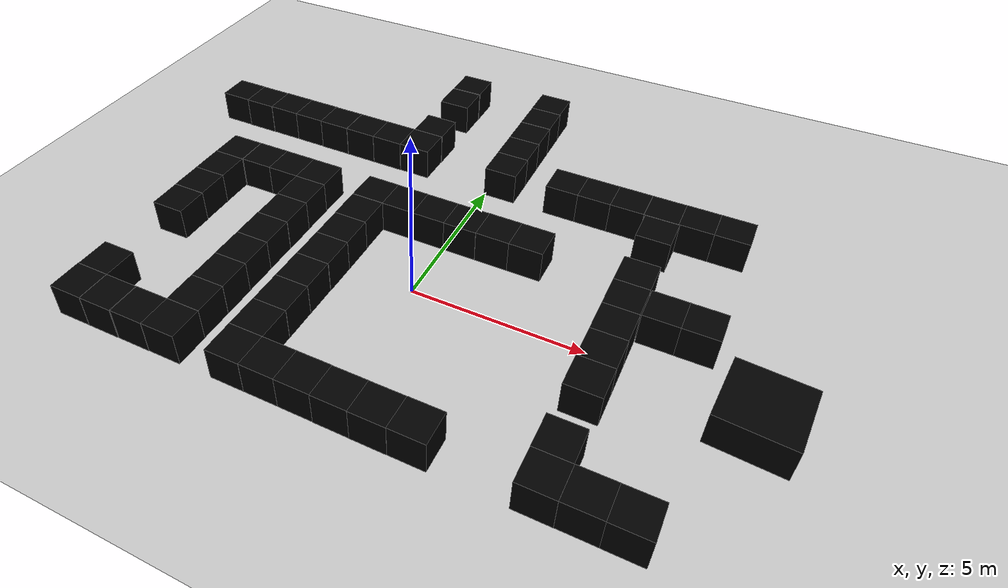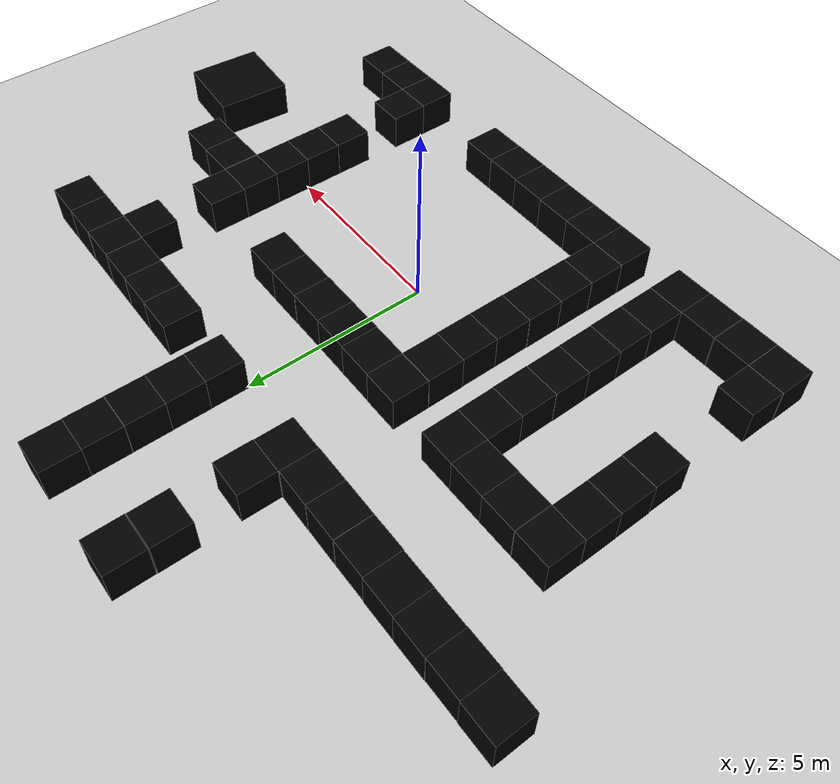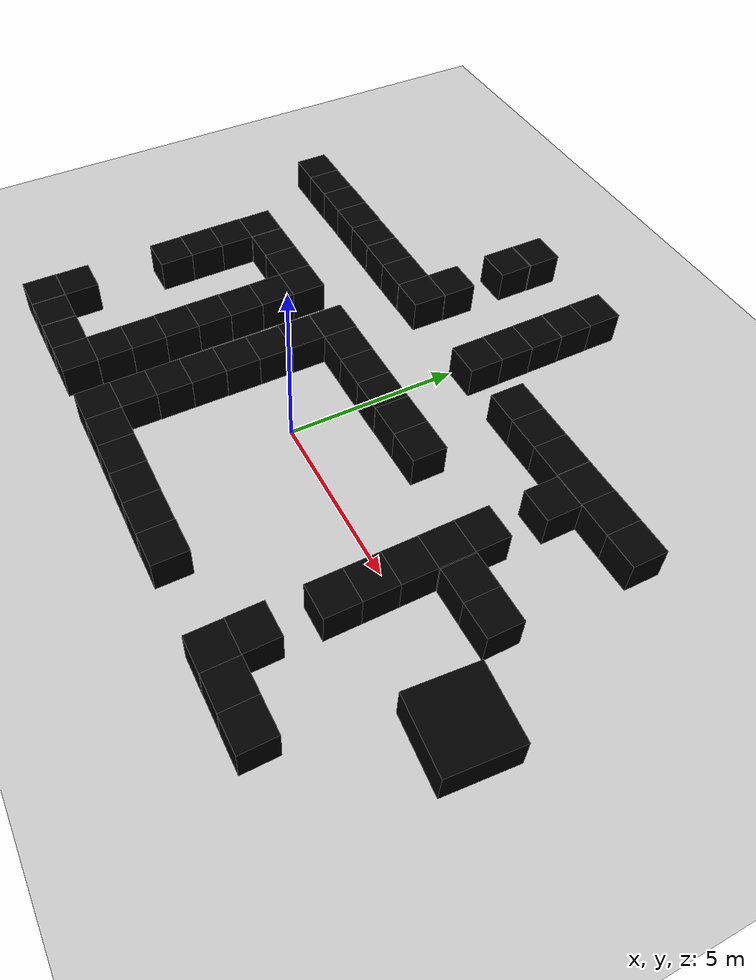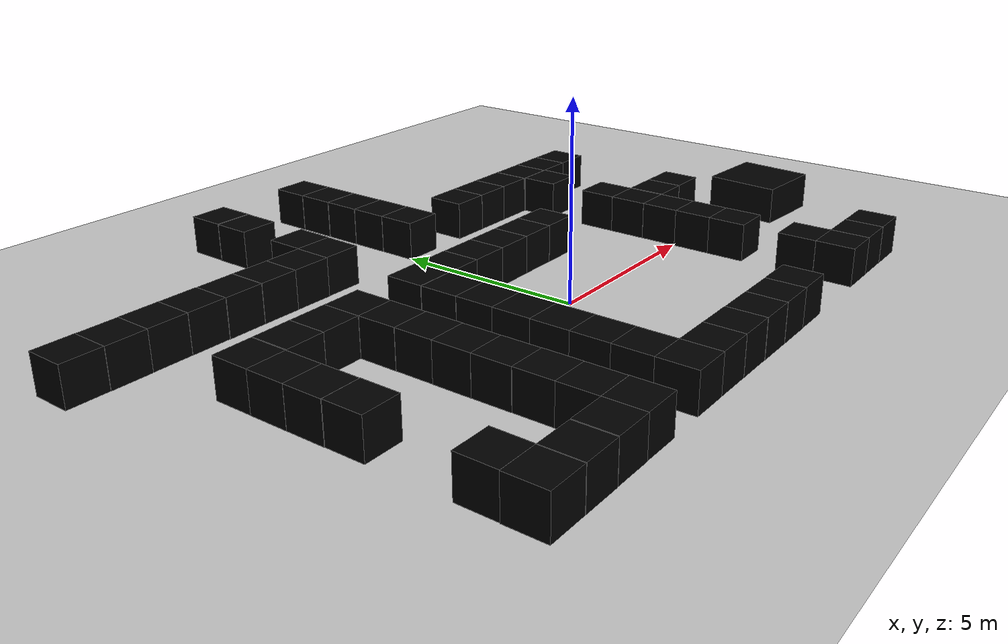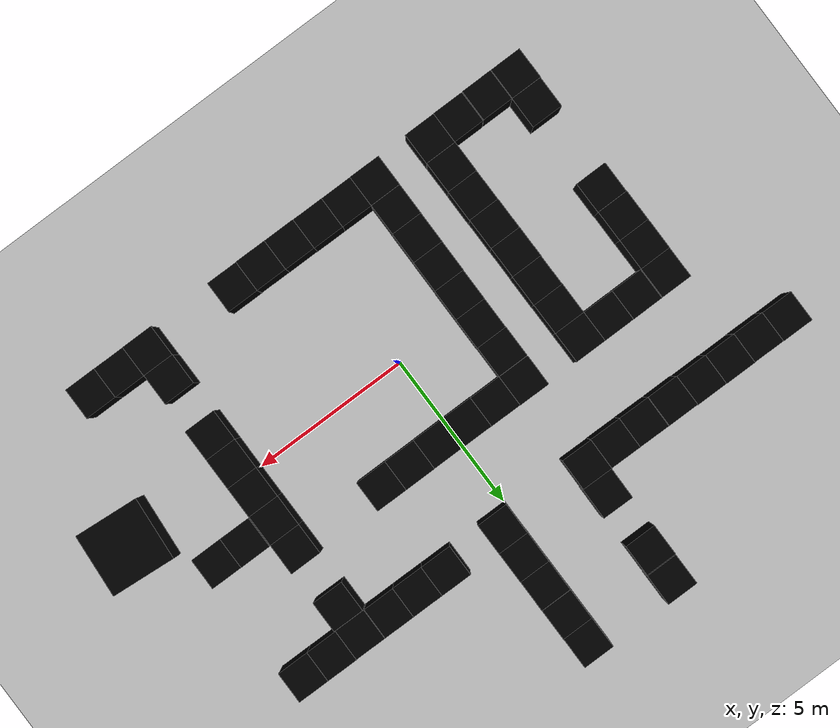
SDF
<sdf version="1.7">
 <world name="rotated_l_shape_world">
  <model name="ground_plane">
   <static>1</static>
   <link name="link">
    <collision name="collision">
     <geometry><plane><normal>0 0 1</normal><size>100 100</size></plane></geometry>
    </collision>
    <visual name="visual"><geometry><plane><normal>0 0 1</normal><size>100 100</size></plane></geometry></visual>
   </link>
  </model>
  <model name="base_1">
   <pose>-6.52785 5.50168 0.5 0 -0 -0.000868</pose>
   <link name="link">
    <collision name="collision"><geometry><box><size>1 1 1</size></box></geometry></collision>
    <visual name="visual">
     <geometry><box><size>1 1 1</size></box></geometry>
     <material><ambient>0 0 0 1</ambient><diffuse>0 0 0 1</diffuse></material>
    </visual>
    <inertial>
     <inertia><ixx>1</ixx><ixy>0</ixy><ixz>0</ixz><iyy>1</iyy><iyz>0</iyz><izz>1</izz></inertia>
     <mass>1</mass>
    </inertial>
   </link>
  </model>
  <model name="base_2">
   <pose>-5.52781 5.48791 0.5 0 -0 -0.000969</pose>
   <link name="link">
    <collision name="collision"><geometry><box><size>1 1 1</size></box></geometry></collision>
    <visual name="visual">
     <geometry><box><size>1 1 1</size></box></geometry>
     <material><ambient>0 0 0 1</ambient><diffuse>0 0 0 1</diffuse></material>
    </visual>
    <inertial>
     <inertia><ixx>1</ixx><ixy>0</ixy><ixz>0</ixz><iyy>1</iyy><iyz>0</iyz><izz>1</izz></inertia>
     <mass>1</mass>
    </inertial>
   </link>
  </model>
  <model name="base_3">
   <pose>-4.51739 5.48296 0.5 0 -0 -0.008492</pose>
   <link name="link">
    <collision name="collision"><geometry><box><size>1 1 1</size></box></geometry></collision>
    <visual name="visual">
     <geometry><box><size>1 1 1</size></box></geometry>
     <material><ambient>0 0 0 1</ambient><diffuse>0 0 0 1</diffuse></material>
    </visual>
    <inertial>
     <inertia><ixx>1</ixx><ixy>0</ixy><ixz>0</ixz><iyy>1</iyy><iyz>0</iyz><izz>1</izz></inertia>
     <mass>1</mass>
    </inertial>
   </link>
  </model>
  <model name="base_4">
   <pose>-3.51737 5.47762 0.499996 4e-06 -3e-06 -0.00854</pose>
   <link name="link">
    <collision name="collision"><geometry><box><size>1 1 1</size></box></geometry></collision>
    <visual name="visual">
     <geometry><box><size>1 1 1</size></box></geometry>
     <material><ambient>0 0 0 1</ambient><diffuse>0 0 0 1</diffuse></material>
    </visual>
    <inertial>
     <inertia><ixx>1</ixx><ixy>0</ixy><ixz>0</ixz><iyy>1</iyy><iyz>0</iyz><izz>1</izz></inertia>
     <mass>1</mass>
    </inertial>
   </link>
  </model>
  <model name="vert_1">
   <pose>-2.49512 6.47989 0.5 0 -0 -0.008769</pose>
   <link name="link">
    <collision name="collision"><geometry><box><size>1 1 1</size></box></geometry></collision>
    <visual name="visual">
     <geometry><box><size>1 1 1</size></box></geometry>
     <material><ambient>0 0 0 1</ambient><diffuse>0 0 0 1</diffuse></material>
    </visual>
    <inertial>
     <inertia><ixx>1</ixx><ixy>0</ixy><ixz>0</ixz><iyy>1</iyy><iyz>0</iyz><izz>1</izz></inertia>
     <mass>1</mass>
    </inertial>
   </link>
  </model>
  <model name="vert_2">
   <pose>-2.50707 8.4806 0.5 0 -0 2.6e-05</pose>
   <link name="link">
    <collision name="collision"><geometry><box><size>1 1 1</size></box></geometry></collision>
    <visual name="visual">
     <geometry><box><size>1 1 1</size></box></geometry>
     <material><ambient>0 0 0 1</ambient><diffuse>0 0 0 1</diffuse></material>
    </visual>
    <inertial>
     <inertia><ixx>1</ixx><ixy>0</ixy><ixz>0</ixz><iyy>1</iyy><iyz>0</iyz><izz>1</izz></inertia>
     <mass>1</mass>
    </inertial>
   </link>
  </model>
  <model name="vert_3">
   <pose>-2.49699 9.5027 0.5 0 -0 2.7e-05</pose>
   <link name="link">
    <collision name="collision"><geometry><box><size>1 1 1</size></box></geometry></collision>
    <visual name="visual">
     <geometry><box><size>1 1 1</size></box></geometry>
     <material><ambient>0 0 0 1</ambient><diffuse>0 0 0 1</diffuse></material>
    </visual>
    <inertial>
     <inertia><ixx>1</ixx><ixy>0</ixy><ixz>0</ixz><iyy>1</iyy><iyz>0</iyz><izz>1</izz></inertia>
     <mass>1</mass>
    </inertial>
   </link>
  </model>
  <model name="hollow_box">
   <pose>9.29913 -0.454122 0.5 0 -0 -0.078746</pose>
   <link name="link">
    <collision name="collision"><geometry><box><size>2 2 1</size></box></geometry></collision>
    <visual name="visual">
     <geometry><box><size>2 2 1</size></box></geometry>
     <material><ambient>0 0 0 0</ambient><diffuse>0 0 0 0</diffuse></material>
    </visual>
    <inertial>
     <inertia><ixx>1</ixx><ixy>0</ixy><ixz>0</ixz><iyy>1</iyy><iyz>0</iyz><izz>1</izz></inertia>
     <mass>1</mass>
    </inertial>
   </link>
  </model>
  <gravity>0 0 -9.8</gravity>
  <magnetic_field>6e-06 2.3e-05 -4.2e-05</magnetic_field>
  <atmosphere type="adiabatic"/>
  <physics type="ode">
   <max_step_size>0.001</max_step_size>
   <real_time_factor>1</real_time_factor>
   <real_time_update_rate>1000</real_time_update_rate>
  </physics>
  <scene><ambient>0.4 0.4 0.4 1</ambient><background>0.7 0.7 0.7 1</background><shadows>1</shadows></scene>
  <spherical_coordinates>
   <surface_model>EARTH_WGS84</surface_model>
   <latitude_deg>0</latitude_deg>
   <longitude_deg>0</longitude_deg>
   <elevation>0</elevation>
   <heading_deg>0</heading_deg>
  </spherical_coordinates>
  <model name="base_2_clone">
   <pose>-7.53131 2.47951 0.5 0 -0 0.003821</pose>
   <link name="link">
    <collision name="collision"><geometry><box><size>1 1 1</size></box></geometry></collision>
    <visual name="visual">
     <geometry><box><size>1 1 1</size></box></geometry>
     <material><ambient>0 0 0 1</ambient><diffuse>0 0 0 1</diffuse></material>
    </visual>
    <inertial>
     <inertia><ixx>1</ixx><ixy>0</ixy><ixz>0</ixz><iyy>1</iyy><iyz>0</iyz><izz>1</izz></inertia>
     <mass>1</mass>
    </inertial>
   </link>
  </model>
  <model name="base_2_clone_0">
   <pose>-6.51392 2.48553 0.5 0 -0 0.005429</pose>
   <link name="link">
    <collision name="collision"><geometry><box><size>1 1 1</size></box></geometry></collision>
    <visual name="visual">
     <geometry><box><size>1 1 1</size></box></geometry>
     <material><ambient>0 0 0 1</ambient><diffuse>0 0 0 1</diffuse></material>
    </visual>
    <inertial>
     <inertia><ixx>1</ixx><ixy>0</ixy><ixz>0</ixz><iyy>1</iyy><iyz>0</iyz><izz>1</izz></inertia>
     <mass>1</mass>
    </inertial>
   </link>
  </model>
  <model name="base_2_clone_1">
   <pose>-5.51349 2.48825 0.5 0 -0 0.004582</pose>
   <link name="link">
    <collision name="collision"><geometry><box><size>1 1 1</size></box></geometry></collision>
    <visual name="visual">
     <geometry><box><size>1 1 1</size></box></geometry>
     <material><ambient>0 0 0 1</ambient><diffuse>0 0 0 1</diffuse></material>
    </visual>
    <inertial>
     <inertia><ixx>1</ixx><ixy>0</ixy><ixz>0</ixz><iyy>1</iyy><iyz>0</iyz><izz>1</izz></inertia>
     <mass>1</mass>
    </inertial>
   </link>
  </model>
  <model name="base_2_clone_2">
   <pose>-4.51338 2.48966 0.5 0 -0 0.00438</pose>
   <link name="link">
    <collision name="collision"><geometry><box><size>1 1 1</size></box></geometry></collision>
    <visual name="visual">
     <geometry><box><size>1 1 1</size></box></geometry>
     <material><ambient>0 0 0 1</ambient><diffuse>0 0 0 1</diffuse></material>
    </visual>
    <inertial>
     <inertia><ixx>1</ixx><ixy>0</ixy><ixz>0</ixz><iyy>1</iyy><iyz>0</iyz><izz>1</izz></inertia>
     <mass>1</mass>
    </inertial>
   </link>
  </model>
  <model name="base_2_clone_2_clone_0">
   <pose>-7.53159 1.4795 0.5 0 -0 0.00382</pose>
   <link name="link">
    <collision name="collision"><geometry><box><size>1 1 1</size></box></geometry></collision>
    <visual name="visual">
     <geometry><box><size>1 1 1</size></box></geometry>
     <material><ambient>0 0 0 1</ambient><diffuse>0 0 0 1</diffuse></material>
    </visual>
    <inertial>
     <inertia><ixx>1</ixx><ixy>0</ixy><ixz>0</ixz><iyy>1</iyy><iyz>0</iyz><izz>1</izz></inertia>
     <mass>1</mass>
    </inertial>
   </link>
  </model>
  <model name="base_2_clone_2_clone_1">
   <pose>-7.52538 0.479514 0.5 0 -0 0.00382</pose>
   <link name="link">
    <collision name="collision"><geometry><box><size>1 1 1</size></box></geometry></collision>
    <visual name="visual">
     <geometry><box><size>1 1 1</size></box></geometry>
     <material><ambient>0 0 0 1</ambient><diffuse>0 0 0 1</diffuse></material>
    </visual>
    <inertial>
     <inertia><ixx>1</ixx><ixy>0</ixy><ixz>0</ixz><iyy>1</iyy><iyz>0</iyz><izz>1</izz></inertia>
     <mass>1</mass>
    </inertial>
   </link>
  </model>
  <model name="base_2_clone_2_clone_2">
   <pose>-4.47865 -3.51047 0.5 0 -0 0.004098</pose>
   <link name="link">
    <collision name="collision"><geometry><box><size>1 1 1</size></box></geometry></collision>
    <visual name="visual">
     <geometry><box><size>1 1 1</size></box></geometry>
     <material><ambient>0 0 0 1</ambient><diffuse>0 0 0 1</diffuse></material>
    </visual>
    <inertial>
     <inertia><ixx>1</ixx><ixy>0</ixy><ixz>0</ixz><iyy>1</iyy><iyz>0</iyz><izz>1</izz></inertia>
     <mass>1</mass>
    </inertial>
   </link>
  </model>
  <model name="base_2_clone_2_clone_3">
   <pose>-7.50105 -4.53582 0.5 0 -0 0.004192</pose>
   <link name="link">
    <collision name="collision"><geometry><box><size>1 1 1</size></box></geometry></collision>
    <visual name="visual">
     <geometry><box><size>1 1 1</size></box></geometry>
     <material><ambient>0 0 0 1</ambient><diffuse>0 0 0 1</diffuse></material>
    </visual>
    <inertial>
     <inertia><ixx>1</ixx><ixy>0</ixy><ixz>0</ixz><iyy>1</iyy><iyz>0</iyz><izz>1</izz></inertia>
     <mass>1</mass>
    </inertial>
   </link>
  </model>
  <model name="base_2_clone_2_clone_4">
   <pose>-6.48883 -4.53341 0.5 0 -0 0.003026</pose>
   <link name="link">
    <collision name="collision"><geometry><box><size>1 1 1</size></box></geometry></collision>
    <visual name="visual">
     <geometry><box><size>1 1 1</size></box></geometry>
     <material><ambient>0 0 0 1</ambient><diffuse>0 0 0 1</diffuse></material>
    </visual>
    <inertial>
     <inertia><ixx>1</ixx><ixy>0</ixy><ixz>0</ixz><iyy>1</iyy><iyz>0</iyz><izz>1</izz></inertia>
     <mass>1</mass>
    </inertial>
   </link>
  </model>
  <model name="base_2_clone_2_clone_5">
   <pose>-4.50757 1.48967 0.5 0 -0 0.004386</pose>
   <link name="link">
    <collision name="collision"><geometry><box><size>1 1 1</size></box></geometry></collision>
    <visual name="visual">
     <geometry><box><size>1 1 1</size></box></geometry>
     <material><ambient>0 0 0 1</ambient><diffuse>0 0 0 1</diffuse></material>
    </visual>
    <inertial>
     <inertia><ixx>1</ixx><ixy>0</ixy><ixz>0</ixz><iyy>1</iyy><iyz>0</iyz><izz>1</izz></inertia>
     <mass>1</mass>
    </inertial>
   </link>
  </model>
  <model name="base_2_clone_2_clone_6">
   <pose>-4.49647 0.489678 0.5 0 -0 0.004445</pose>
   <link name="link">
    <collision name="collision"><geometry><box><size>1 1 1</size></box></geometry></collision>
    <visual name="visual">
     <geometry><box><size>1 1 1</size></box></geometry>
     <material><ambient>0 0 0 1</ambient><diffuse>0 0 0 1</diffuse></material>
    </visual>
    <inertial>
     <inertia><ixx>1</ixx><ixy>0</ixy><ixz>0</ixz><iyy>1</iyy><iyz>0</iyz><izz>1</izz></inertia>
     <mass>1</mass>
    </inertial>
   </link>
  </model>
  <model name="base_2_clone_2_clone_7">
   <pose>-4.49862 -0.510347 0.5 0 -0 0.004454</pose>
   <link name="link">
    <collision name="collision"><geometry><box><size>1 1 1</size></box></geometry></collision>
    <visual name="visual">
     <geometry><box><size>1 1 1</size></box></geometry>
     <material><ambient>0 0 0 1</ambient><diffuse>0 0 0 1</diffuse></material>
    </visual>
    <inertial>
     <inertia><ixx>1</ixx><ixy>0</ixy><ixz>0</ixz><iyy>1</iyy><iyz>0</iyz><izz>1</izz></inertia>
     <mass>1</mass>
    </inertial>
   </link>
  </model>
  <model name="base_2_clone_2_clone_8">
   <pose>-4.49007 -1.51033 0.5 0 -0 0.004423</pose>
   <link name="link">
    <collision name="collision"><geometry><box><size>1 1 1</size></box></geometry></collision>
    <visual name="visual">
     <geometry><box><size>1 1 1</size></box></geometry>
     <material><ambient>0 0 0 1</ambient><diffuse>0 0 0 1</diffuse></material>
    </visual>
    <inertial>
     <inertia><ixx>1</ixx><ixy>0</ixy><ixz>0</ixz><iyy>1</iyy><iyz>0</iyz><izz>1</izz></inertia>
     <mass>1</mass>
    </inertial>
   </link>
  </model>
  <model name="base_2_clone_2_clone_9">
   <pose>-5.46979 -4.52337 0.5 0 -0 0.003053</pose>
   <link name="link">
    <collision name="collision"><geometry><box><size>1 1 1</size></box></geometry></collision>
    <visual name="visual">
     <geometry><box><size>1 1 1</size></box></geometry>
     <material><ambient>0 0 0 1</ambient><diffuse>0 0 0 1</diffuse></material>
    </visual>
    <inertial>
     <inertia><ixx>1</ixx><ixy>0</ixy><ixz>0</ixz><iyy>1</iyy><iyz>0</iyz><izz>1</izz></inertia>
     <mass>1</mass>
    </inertial>
   </link>
  </model>
  <model name="base_2_clone_2_clone_10">
   <pose>-7.51142 -0.523993 0.5 0 -0 0.004492</pose>
   <link name="link">
    <collision name="collision"><geometry><box><size>1 1 1</size></box></geometry></collision>
    <visual name="visual">
     <geometry><box><size>1 1 1</size></box></geometry>
     <material><ambient>0 0 0 1</ambient><diffuse>0 0 0 1</diffuse></material>
    </visual>
    <inertial>
     <inertia><ixx>1</ixx><ixy>0</ixy><ixz>0</ixz><iyy>1</iyy><iyz>0</iyz><izz>1</izz></inertia>
     <mass>1</mass>
    </inertial>
   </link>
  </model>
  <model name="base_2_clone_2_clone_11">
   <pose>-4.47905 -2.5103 0.5 -0 -1e-06 0.004419</pose>
   <link name="link">
    <collision name="collision"><geometry><box><size>1 1 1</size></box></geometry></collision>
    <visual name="visual">
     <geometry><box><size>1 1 1</size></box></geometry>
     <material><ambient>0 0 0 1</ambient><diffuse>0 0 0 1</diffuse></material>
    </visual>
    <inertial>
     <inertia><ixx>1</ixx><ixy>0</ixy><ixz>0</ixz><iyy>1</iyy><iyz>0</iyz><izz>1</izz></inertia>
     <mass>1</mass>
    </inertial>
   </link>
  </model>
  <model name="base_1_clone">
   <pose>-7.52788 5.50775 0.5 0 -0 -0.000889</pose>
   <link name="link">
    <collision name="collision"><geometry><box><size>1 1 1</size></box></geometry></collision>
    <visual name="visual">
     <geometry><box><size>1 1 1</size></box></geometry>
     <material><ambient>0 0 0 1</ambient><diffuse>0 0 0 1</diffuse></material>
    </visual>
    <inertial>
     <inertia><ixx>1</ixx><ixy>0</ixy><ixz>0</ixz><iyy>1</iyy><iyz>0</iyz><izz>1</izz></inertia>
     <mass>1</mass>
    </inertial>
   </link>
  </model>
  <model name="base_1_clone_0">
   <pose>-8.52797 5.50107 0.5 0 -0 -0.00075</pose>
   <link name="link">
    <collision name="collision"><geometry><box><size>1 1 1</size></box></geometry></collision>
    <visual name="visual">
     <geometry><box><size>1 1 1</size></box></geometry>
     <material><ambient>0 0 0 1</ambient><diffuse>0 0 0 1</diffuse></material>
    </visual>
    <inertial>
     <inertia><ixx>1</ixx><ixy>0</ixy><ixz>0</ixz><iyy>1</iyy><iyz>0</iyz><izz>1</izz></inertia>
     <mass>1</mass>
    </inertial>
   </link>
  </model>
  <model name="base_1_clone_1">
   <pose>-9.52802 5.51026 0.5 0 -0 -0.00065</pose>
   <link name="link">
    <collision name="collision"><geometry><box><size>1 1 1</size></box></geometry></collision>
    <visual name="visual">
     <geometry><box><size>1 1 1</size></box></geometry>
     <material><ambient>0 0 0 1</ambient><diffuse>0 0 0 1</diffuse></material>
    </visual>
    <inertial>
     <inertia><ixx>1</ixx><ixy>0</ixy><ixz>0</ixz><iyy>1</iyy><iyz>0</iyz><izz>1</izz></inertia>
     <mass>1</mass>
    </inertial>
   </link>
  </model>
  <model name="base_1_clone_2">
   <pose>-2.5172 5.48004 0.5 -0 -0 -0.008766</pose>
   <link name="link">
    <collision name="collision"><geometry><box><size>1 1 1</size></box></geometry></collision>
    <visual name="visual">
     <geometry><box><size>1 1 1</size></box></geometry>
     <material><ambient>0 0 0 1</ambient><diffuse>0 0 0 1</diffuse></material>
    </visual>
    <inertial>
     <inertia><ixx>1</ixx><ixy>0</ixy><ixz>0</ixz><iyy>1</iyy><iyz>0</iyz><izz>1</izz></inertia>
     <mass>1</mass>
    </inertial>
   </link>
  </model>
  <model name="base_1_clone_3">
   <pose>-4.46981 -4.5137 0.5 0 -0 0.003053</pose>
   <link name="link">
    <collision name="collision"><geometry><box><size>1 1 1</size></box></geometry></collision>
    <visual name="visual">
     <geometry><box><size>1 1 1</size></box></geometry>
     <material><ambient>0 0 0 1</ambient><diffuse>0 0 0 1</diffuse></material>
    </visual>
    <inertial>
     <inertia><ixx>1</ixx><ixy>0</ixy><ixz>0</ixz><iyy>1</iyy><iyz>0</iyz><izz>1</izz></inertia>
     <mass>1</mass>
    </inertial>
   </link>
  </model>
  <model name="base_1_clone_4">
   <pose>-7.48992 -3.53346 0.5 0 -0 -0.000548</pose>
   <link name="link">
    <collision name="collision"><geometry><box><size>1 1 1</size></box></geometry></collision>
    <visual name="visual">
     <geometry><box><size>1 1 1</size></box></geometry>
     <material><ambient>0 0 0 1</ambient><diffuse>0 0 0 1</diffuse></material>
    </visual>
    <inertial>
     <inertia><ixx>1</ixx><ixy>0</ixy><ixz>0</ixz><iyy>1</iyy><iyz>0</iyz><izz>1</izz></inertia>
     <mass>1</mass>
    </inertial>
   </link>
  </model>
  <model name="base_1_clone_5">
   <pose>-2.51569 -4.49601 0.5 0 -0 -0.000301</pose>
   <link name="link">
    <collision name="collision"><geometry><box><size>1 1 1</size></box></geometry></collision>
    <visual name="visual">
     <geometry><box><size>1 1 1</size></box></geometry>
     <material><ambient>0 0 0 1</ambient><diffuse>0 0 0 1</diffuse></material>
    </visual>
    <inertial>
     <inertia><ixx>1</ixx><ixy>0</ixy><ixz>0</ixz><iyy>1</iyy><iyz>0</iyz><izz>1</izz></inertia>
     <mass>1</mass>
    </inertial>
   </link>
  </model>
  <model name="base_1_clone_6">
   <pose>-2.51465 -3.49411 0.5 0 -0 0.000959</pose>
   <link name="link">
    <collision name="collision"><geometry><box><size>1 1 1</size></box></geometry></collision>
    <visual name="visual">
     <geometry><box><size>1 1 1</size></box></geometry>
     <material><ambient>0 0 0 1</ambient><diffuse>0 0 0 1</diffuse></material>
    </visual>
    <inertial>
     <inertia><ixx>1</ixx><ixy>0</ixy><ixz>0</ixz><iyy>1</iyy><iyz>0</iyz><izz>1</izz></inertia>
     <mass>1</mass>
    </inertial>
   </link>
  </model>
  <model name="base_1_clone_7">
   <pose>-2.5103 -2.49409 0.5 0 -0 0.000976</pose>
   <link name="link">
    <collision name="collision"><geometry><box><size>1 1 1</size></box></geometry></collision>
    <visual name="visual">
     <geometry><box><size>1 1 1</size></box></geometry>
     <material><ambient>0 0 0 1</ambient><diffuse>0 0 0 1</diffuse></material>
    </visual>
    <inertial>
     <inertia><ixx>1</ixx><ixy>0</ixy><ixz>0</ixz><iyy>1</iyy><iyz>0</iyz><izz>1</izz></inertia>
     <mass>1</mass>
    </inertial>
   </link>
  </model>
  <model name="base_1_clone_8">
   <pose>-2.50895 -1.49405 0.5 0 -0 0.001052</pose>
   <link name="link">
    <collision name="collision"><geometry><box><size>1 1 1</size></box></geometry></collision>
    <visual name="visual">
     <geometry><box><size>1 1 1</size></box></geometry>
     <material><ambient>0 0 0 1</ambient><diffuse>0 0 0 1</diffuse></material>
    </visual>
    <inertial>
     <inertia><ixx>1</ixx><ixy>0</ixy><ixz>0</ixz><iyy>1</iyy><iyz>0</iyz><izz>1</izz></inertia>
     <mass>1</mass>
    </inertial>
   </link>
  </model>
  <model name="base_1_clone_9">
   <pose>-2.50093 -0.493942 0.5 0 -0 0.001228</pose>
   <link name="link">
    <collision name="collision"><geometry><box><size>1 1 1</size></box></geometry></collision>
    <visual name="visual">
     <geometry><box><size>1 1 1</size></box></geometry>
     <material><ambient>0 0 0 1</ambient><diffuse>0 0 0 1</diffuse></material>
    </visual>
    <inertial>
     <inertia><ixx>1</ixx><ixy>0</ixy><ixz>0</ixz><iyy>1</iyy><iyz>0</iyz><izz>1</izz></inertia>
     <mass>1</mass>
    </inertial>
   </link>
  </model>
  <model name="base_1_clone_10">
   <pose>-2.50073 0.506109 0.5 0 -0 0.001326</pose>
   <link name="link">
    <collision name="collision"><geometry><box><size>1 1 1</size></box></geometry></collision>
    <visual name="visual">
     <geometry><box><size>1 1 1</size></box></geometry>
     <material><ambient>0 0 0 1</ambient><diffuse>0 0 0 1</diffuse></material>
    </visual>
    <inertial>
     <inertia><ixx>1</ixx><ixy>0</ixy><ixz>0</ixz><iyy>1</iyy><iyz>0</iyz><izz>1</izz></inertia>
     <mass>1</mass>
    </inertial>
   </link>
  </model>
  <model name="base_1_clone_11">
   <pose>-2.50966 1.50617 0.5 0 -0 0.001464</pose>
   <link name="link">
    <collision name="collision"><geometry><box><size>1 1 1</size></box></geometry></collision>
    <visual name="visual">
     <geometry><box><size>1 1 1</size></box></geometry>
     <material><ambient>0 0 0 1</ambient><diffuse>0 0 0 1</diffuse></material>
    </visual>
    <inertial>
     <inertia><ixx>1</ixx><ixy>0</ixy><ixz>0</ixz><iyy>1</iyy><iyz>0</iyz><izz>1</izz></inertia>
     <mass>1</mass>
    </inertial>
   </link>
  </model>
  <model name="base_1_clone_12">
   <pose>-2.51207 2.51637 0.5 0 -0 -0.001304</pose>
   <link name="link">
    <collision name="collision"><geometry><box><size>1 1 1</size></box></geometry></collision>
    <visual name="visual">
     <geometry><box><size>1 1 1</size></box></geometry>
     <material><ambient>0 0 0 1</ambient><diffuse>0 0 0 1</diffuse></material>
    </visual>
    <inertial>
     <inertia><ixx>1</ixx><ixy>0</ixy><ixz>0</ixz><iyy>1</iyy><iyz>0</iyz><izz>1</izz></inertia>
     <mass>1</mass>
    </inertial>
   </link>
  </model>
  <model name="base_1_clone_13">
   <pose>-1.51568 -4.49386 0.5 0 -0 -0.000305</pose>
   <link name="link">
    <collision name="collision"><geometry><box><size>1 1 1</size></box></geometry></collision>
    <visual name="visual">
     <geometry><box><size>1 1 1</size></box></geometry>
     <material><ambient>0 0 0 1</ambient><diffuse>0 0 0 1</diffuse></material>
    </visual>
    <inertial>
     <inertia><ixx>1</ixx><ixy>0</ixy><ixz>0</ixz><iyy>1</iyy><iyz>0</iyz><izz>1</izz></inertia>
     <mass>1</mass>
    </inertial>
   </link>
  </model>
  <model name="base_1_clone_14">
   <pose>-0.515667 -4.49651 0.5 0 -0 -0.000314</pose>
   <link name="link">
    <collision name="collision"><geometry><box><size>1 1 1</size></box></geometry></collision>
    <visual name="visual">
     <geometry><box><size>1 1 1</size></box></geometry>
     <material><ambient>0 0 0 1</ambient><diffuse>0 0 0 1</diffuse></material>
    </visual>
    <inertial>
     <inertia><ixx>1</ixx><ixy>0</ixy><ixz>0</ixz><iyy>1</iyy><iyz>0</iyz><izz>1</izz></inertia>
     <mass>1</mass>
    </inertial>
   </link>
  </model>
  <model name="base_1_clone_15">
   <pose>0.484374 -4.50464 0.5 0 -0 -0.000336</pose>
   <link name="link">
    <collision name="collision"><geometry><box><size>1 1 1</size></box></geometry></collision>
    <visual name="visual">
     <geometry><box><size>1 1 1</size></box></geometry>
     <material><ambient>0 0 0 1</ambient><diffuse>0 0 0 1</diffuse></material>
    </visual>
    <inertial>
     <inertia><ixx>1</ixx><ixy>0</ixy><ixz>0</ixz><iyy>1</iyy><iyz>0</iyz><izz>1</izz></inertia>
     <mass>1</mass>
    </inertial>
   </link>
  </model>
  <model name="base_1_clone_16">
   <pose>1.4844 -4.50925 0.5 0 -0 -0.000323</pose>
   <link name="link">
    <collision name="collision"><geometry><box><size>1 1 1</size></box></geometry></collision>
    <visual name="visual">
     <geometry><box><size>1 1 1</size></box></geometry>
     <material><ambient>0 0 0 1</ambient><diffuse>0 0 0 1</diffuse></material>
    </visual>
    <inertial>
     <inertia><ixx>1</ixx><ixy>0</ixy><ixz>0</ixz><iyy>1</iyy><iyz>0</iyz><izz>1</izz></inertia>
     <mass>1</mass>
    </inertial>
   </link>
  </model>
  <model name="base_1_clone_17">
   <pose>-1.51202 2.5066 0.500001 -1e-06 0 -0.001177</pose>
   <link name="link">
    <collision name="collision"><geometry><box><size>1 1 1</size></box></geometry></collision>
    <visual name="visual">
     <geometry><box><size>1 1 1</size></box></geometry>
     <material><ambient>0 0 0 1</ambient><diffuse>0 0 0 1</diffuse></material>
    </visual>
    <inertial>
     <inertia><ixx>1</ixx><ixy>0</ixy><ixz>0</ixz><iyy>1</iyy><iyz>0</iyz><izz>1</izz></inertia>
     <mass>1</mass>
    </inertial>
   </link>
  </model>
  <model name="base_1_clone_18">
   <pose>-0.511984 2.49961 0.5 0 -0 -0.001102</pose>
   <link name="link">
    <collision name="collision"><geometry><box><size>1 1 1</size></box></geometry></collision>
    <visual name="visual">
     <geometry><box><size>1 1 1</size></box></geometry>
     <material><ambient>0 0 0 1</ambient><diffuse>0 0 0 1</diffuse></material>
    </visual>
    <inertial>
     <inertia><ixx>1</ixx><ixy>0</ixy><ixz>0</ixz><iyy>1</iyy><iyz>0</iyz><izz>1</izz></inertia>
     <mass>1</mass>
    </inertial>
   </link>
  </model>
  <model name="base_1_clone_19">
   <pose>0.488056 2.49715 0.5 0 -0 -0.001086</pose>
   <link name="link">
    <collision name="collision"><geometry><box><size>1 1 1</size></box></geometry></collision>
    <visual name="visual">
     <geometry><box><size>1 1 1</size></box></geometry>
     <material><ambient>0 0 0 1</ambient><diffuse>0 0 0 1</diffuse></material>
    </visual>
    <inertial>
     <inertia><ixx>1</ixx><ixy>0</ixy><ixz>0</ixz><iyy>1</iyy><iyz>0</iyz><izz>1</izz></inertia>
     <mass>1</mass>
    </inertial>
   </link>
  </model>
  <model name="base_1_clone_20">
   <pose>1.48816 2.50206 0.5 0 -0 -0.000893</pose>
   <link name="link">
    <collision name="collision"><geometry><box><size>1 1 1</size></box></geometry></collision>
    <visual name="visual">
     <geometry><box><size>1 1 1</size></box></geometry>
     <material><ambient>0 0 0 1</ambient><diffuse>0 0 0 1</diffuse></material>
    </visual>
    <inertial>
     <inertia><ixx>1</ixx><ixy>0</ixy><ixz>0</ixz><iyy>1</iyy><iyz>0</iyz><izz>1</izz></inertia>
     <mass>1</mass>
    </inertial>
   </link>
  </model>
  <model name="base_1_clone_21">
   <pose>0.473028 5.50904 0.5 0 -0 -0.000748</pose>
   <link name="link">
    <collision name="collision"><geometry><box><size>1 1 1</size></box></geometry></collision>
    <visual name="visual">
     <geometry><box><size>1 1 1</size></box></geometry>
     <material><ambient>0 0 0 1</ambient><diffuse>0 0 0 1</diffuse></material>
    </visual>
    <inertial>
     <inertia><ixx>1</ixx><ixy>0</ixy><ixz>0</ixz><iyy>1</iyy><iyz>0</iyz><izz>1</izz></inertia>
     <mass>1</mass>
    </inertial>
   </link>
  </model>
  <model name="base_1_clone_22">
   <pose>0.468276 6.50908 0.5 0 -0 -0.000802</pose>
   <link name="link">
    <collision name="collision"><geometry><box><size>1 1 1</size></box></geometry></collision>
    <visual name="visual">
     <geometry><box><size>1 1 1</size></box></geometry>
     <material><ambient>0 0 0 1</ambient><diffuse>0 0 0 1</diffuse></material>
    </visual>
    <inertial>
     <inertia><ixx>1</ixx><ixy>0</ixy><ixz>0</ixz><iyy>1</iyy><iyz>0</iyz><izz>1</izz></inertia>
     <mass>1</mass>
    </inertial>
   </link>
  </model>
  <model name="base_1_clone_23">
   <pose>0.46377 7.50921 0.5 0 -0 -0.001047</pose>
   <link name="link">
    <collision name="collision"><geometry><box><size>1 1 1</size></box></geometry></collision>
    <visual name="visual">
     <geometry><box><size>1 1 1</size></box></geometry>
     <material><ambient>0 0 0 1</ambient><diffuse>0 0 0 1</diffuse></material>
    </visual>
    <inertial>
     <inertia><ixx>1</ixx><ixy>0</ixy><ixz>0</ixz><iyy>1</iyy><iyz>0</iyz><izz>1</izz></inertia>
     <mass>1</mass>
    </inertial>
   </link>
  </model>
  <model name="base_1_clone_24">
   <pose>0.46037 8.51789 0.5 0 -0 -0.000837</pose>
   <link name="link">
    <collision name="collision"><geometry><box><size>1 1 1</size></box></geometry></collision>
    <visual name="visual">
     <geometry><box><size>1 1 1</size></box></geometry>
     <material><ambient>0 0 0 1</ambient><diffuse>0 0 0 1</diffuse></material>
    </visual>
    <inertial>
     <inertia><ixx>1</ixx><ixy>0</ixy><ixz>0</ixz><iyy>1</iyy><iyz>0</iyz><izz>1</izz></inertia>
     <mass>1</mass>
    </inertial>
   </link>
  </model>
  <model name="base_1_clone_25">
   <pose>0.454584 9.5179 0.5 0 -0 -0.000837</pose>
   <link name="link">
    <collision name="collision"><geometry><box><size>1 1 1</size></box></geometry></collision>
    <visual name="visual">
     <geometry><box><size>1 1 1</size></box></geometry>
     <material><ambient>0 0 0 1</ambient><diffuse>0 0 0 1</diffuse></material>
    </visual>
    <inertial>
     <inertia><ixx>1</ixx><ixy>0</ixy><ixz>0</ixz><iyy>1</iyy><iyz>0</iyz><izz>1</izz></inertia>
     <mass>1</mass>
    </inertial>
   </link>
  </model>
  <model name="base_1_clone_26">
   <pose>2.48827 2.50078 0.5 0 -0 -0.00088</pose>
   <link name="link">
    <collision name="collision"><geometry><box><size>1 1 1</size></box></geometry></collision>
    <visual name="visual">
     <geometry><box><size>1 1 1</size></box></geometry>
     <material><ambient>0 0 0 1</ambient><diffuse>0 0 0 1</diffuse></material>
    </visual>
    <inertial>
     <inertia><ixx>1</ixx><ixy>0</ixy><ixz>0</ixz><iyy>1</iyy><iyz>0</iyz><izz>1</izz></inertia>
     <mass>1</mass>
    </inertial>
   </link>
  </model>
  <model name="base_1_clone_27">
   <pose>2.48442 -4.50435 0.5 0 -0 -0.000309</pose>
   <link name="link">
    <collision name="collision"><geometry><box><size>1 1 1</size></box></geometry></collision>
    <visual name="visual">
     <geometry><box><size>1 1 1</size></box></geometry>
     <material><ambient>0 0 0 1</ambient><diffuse>0 0 0 1</diffuse></material>
    </visual>
    <inertial>
     <inertia><ixx>1</ixx><ixy>0</ixy><ixz>0</ixz><iyy>1</iyy><iyz>0</iyz><izz>1</izz></inertia>
     <mass>1</mass>
    </inertial>
   </link>
  </model>
  <model name="base_1_clone_31">
   <pose>4.45897 5.48825 0.5 0 -0 -0.003446</pose>
   <link name="link">
    <collision name="collision"><geometry><box><size>1 1 1</size></box></geometry></collision>
    <visual name="visual">
     <geometry><box><size>1 1 1</size></box></geometry>
     <material><ambient>0 0 0 1</ambient><diffuse>0 0 0 1</diffuse></material>
    </visual>
    <inertial>
     <inertia><ixx>1</ixx><ixy>0</ixy><ixz>0</ixz><iyy>1</iyy><iyz>0</iyz><izz>1</izz></inertia>
     <mass>1</mass>
    </inertial>
   </link>
  </model>
  <model name="base_1_clone_32">
   <pose>3.45885 5.4893 0.5 0 -0 -0.003448</pose>
   <link name="link">
    <collision name="collision"><geometry><box><size>1 1 1</size></box></geometry></collision>
    <visual name="visual">
     <geometry><box><size>1 1 1</size></box></geometry>
     <material><ambient>0 0 0 1</ambient><diffuse>0 0 0 1</diffuse></material>
    </visual>
    <inertial>
     <inertia><ixx>1</ixx><ixy>0</ixy><ixz>0</ixz><iyy>1</iyy><iyz>0</iyz><izz>1</izz></inertia>
     <mass>1</mass>
    </inertial>
   </link>
  </model>
  <model name="base_1_clone_33">
   <pose>2.45881 5.49389 0.5 0 -0 -0.003357</pose>
   <link name="link">
    <collision name="collision"><geometry><box><size>1 1 1</size></box></geometry></collision>
    <visual name="visual">
     <geometry><box><size>1 1 1</size></box></geometry>
     <material><ambient>0 0 0 1</ambient><diffuse>0 0 0 1</diffuse></material>
    </visual>
    <inertial>
     <inertia><ixx>1</ixx><ixy>0</ixy><ixz>0</ixz><iyy>1</iyy><iyz>0</iyz><izz>1</izz></inertia>
     <mass>1</mass>
    </inertial>
   </link>
  </model>
  <model name="base_1_clone_34">
   <pose>6.46842 5.49094 0.5 0 0 -0.002813</pose>
   <link name="link">
    <collision name="collision"><geometry><box><size>1 1 1</size></box></geometry></collision>
    <visual name="visual">
     <geometry><box><size>1 1 1</size></box></geometry>
     <material><ambient>0 0 0 1</ambient><diffuse>0 0 0 1</diffuse></material>
    </visual>
    <inertial>
     <inertia><ixx>1</ixx><ixy>0</ixy><ixz>0</ixz><iyy>1</iyy><iyz>0</iyz><izz>1</izz></inertia>
     <mass>1</mass>
    </inertial>
   </link>
  </model>
  <model name="base_1_clone_35">
   <pose>7.46917 5.48876 0.5 0 -0 -0.002852</pose>
   <link name="link">
    <collision name="collision"><geometry><box><size>1 1 1</size></box></geometry></collision>
    <visual name="visual">
     <geometry><box><size>1 1 1</size></box></geometry>
     <material><ambient>0 0 0 1</ambient><diffuse>0 0 0 1</diffuse></material>
    </visual>
    <inertial>
     <inertia><ixx>1</ixx><ixy>0</ixy><ixz>0</ixz><iyy>1</iyy><iyz>0</iyz><izz>1</izz></inertia>
     <mass>1</mass>
    </inertial>
   </link>
  </model>
  <model name="base_1_clone_36">
   <pose>5.47788 -4.49623 0.5 0 -0 -0.000276</pose>
   <link name="link">
    <collision name="collision"><geometry><box><size>1 1 1</size></box></geometry></collision>
    <visual name="visual">
     <geometry><box><size>1 1 1</size></box></geometry>
     <material><ambient>0 0 0 1</ambient><diffuse>0 0 0 1</diffuse></material>
    </visual>
    <inertial>
     <inertia><ixx>1</ixx><ixy>0</ixy><ixz>0</ixz><iyy>1</iyy><iyz>0</iyz><izz>1</izz></inertia>
     <mass>1</mass>
    </inertial>
   </link>
  </model>
  <model name="base_1_clone_37">
   <pose>5.47125 -3.4962 0.5 0 -0 -0.000263</pose>
   <link name="link">
    <collision name="collision"><geometry><box><size>1 1 1</size></box></geometry></collision>
    <visual name="visual">
     <geometry><box><size>1 1 1</size></box></geometry>
     <material><ambient>0 0 0 1</ambient><diffuse>0 0 0 1</diffuse></material>
    </visual>
    <inertial>
     <inertia><ixx>1</ixx><ixy>0</ixy><ixz>0</ixz><iyy>1</iyy><iyz>0</iyz><izz>1</izz></inertia>
     <mass>1</mass>
    </inertial>
   </link>
  </model>
  <model name="base_1_clone_38">
   <pose>6.47869 -4.49182 0.5 0 -0 -0.000362</pose>
   <link name="link">
    <collision name="collision"><geometry><box><size>1 1 1</size></box></geometry></collision>
    <visual name="visual">
     <geometry><box><size>1 1 1</size></box></geometry>
     <material><ambient>0 0 0 1</ambient><diffuse>0 0 0 1</diffuse></material>
    </visual>
    <inertial>
     <inertia><ixx>1</ixx><ixy>0</ixy><ixz>0</ixz><iyy>1</iyy><iyz>0</iyz><izz>1</izz></inertia>
     <mass>1</mass>
    </inertial>
   </link>
  </model>
  <model name="base_1_clone_39">
   <pose>7.47869 -4.49526 0.5 0 -0 -0.000361</pose>
   <link name="link">
    <collision name="collision"><geometry><box><size>1 1 1</size></box></geometry></collision>
    <visual name="visual">
     <geometry><box><size>1 1 1</size></box></geometry>
     <material><ambient>0 0 0 1</ambient><diffuse>0 0 0 1</diffuse></material>
    </visual>
    <inertial>
     <inertia><ixx>1</ixx><ixy>0</ixy><ixz>0</ixz><iyy>1</iyy><iyz>0</iyz><izz>1</izz></inertia>
     <mass>1</mass>
    </inertial>
   </link>
  </model>
  <light name="user_directional_light_0" type="directional">
   <pose>-3.1524 19.1336 1 0 -0 0</pose>
   <diffuse>0.5 0.5 0.5 1</diffuse>
   <specular>0.1 0.1 0.1 1</specular>
   <direction>0.1 0.1 -0.9</direction>
   <attenuation>
    <range>20</range>
    <constant>0.5</constant>
    <linear>0.01</linear>
    <quadratic>0.001</quadratic>
   </attenuation>
   <spot><inner_angle>0</inner_angle><outer_angle>0</outer_angle><falloff>0</falloff></spot>
  </light>
  <light name="user_directional_light_1" type="directional">
   <pose>-3.23074 17.4601 1 0 -0 0</pose>
   <diffuse>0.5 0.5 0.5 1</diffuse>
   <specular>0.1 0.1 0.1 1</specular>
   <direction>0.1 0.1 -0.9</direction>
   <attenuation>
    <range>20</range>
    <constant>0.5</constant>
    <linear>0.01</linear>
    <quadratic>0.001</quadratic>
   </attenuation>
   <spot><inner_angle>0</inner_angle><outer_angle>0</outer_angle><falloff>0</falloff></spot>
  </light>
  <light name="user_directional_light_2" type="directional">
   <pose>-3.90581 -16.0109 1 0 -0 0</pose>
   <diffuse>0.5 0.5 0.5 1</diffuse>
   <specular>0.1 0.1 0.1 1</specular>
   <direction>0.1 0.1 -0.9</direction>
   <attenuation>
    <range>20</range>
    <constant>0.5</constant>
    <linear>0.01</linear>
    <quadratic>0.001</quadratic>
   </attenuation>
   <spot><inner_angle>0</inner_angle><outer_angle>0</outer_angle><falloff>0</falloff></spot>
  </light>
  <light name="user_directional_light_3" type="directional">
   <pose>-3.98356 -17.4828 1 0 -0 0</pose>
   <diffuse>0.5 0.5 0.5 1</diffuse>
   <specular>0.1 0.1 0.1 1</specular>
   <direction>0.1 0.1 -0.9</direction>
   <attenuation>
    <range>20</range>
    <constant>0.5</constant>
    <linear>0.01</linear>
    <quadratic>0.001</quadratic>
   </attenuation>
   <spot><inner_angle>0</inner_angle><outer_angle>0</outer_angle><falloff>0</falloff></spot>
  </light>
  <model name="base_1_clone_28">
   <pose>5.46819 5.48499 0.5 0 -0 -0.002397</pose>
   <link name="link">
    <collision name="collision"><geometry><box><size>1 1 1</size></box></geometry></collision>
    <visual name="visual">
     <geometry><box><size>1 1 1</size></box></geometry>
     <material><ambient>0 0 0 1</ambient><diffuse>0 0 0 1</diffuse></material>
    </visual>
    <inertial>
     <inertia><ixx>1</ixx><ixy>0</ixy><ixz>0</ixz><iyy>1</iyy><iyz>0</iyz><izz>1</izz></inertia>
     <mass>1</mass>
    </inertial>
   </link>
  </model>
  <model name="base_1_clone_29">
   <pose>5.50017 4.47761 0.5 0 -0 -0.002081</pose>
   <link name="link">
    <collision name="collision"><geometry><box><size>1 1 1</size></box></geometry></collision>
    <visual name="visual">
     <geometry><box><size>1 1 1</size></box></geometry>
     <material><ambient>0 0 0 1</ambient><diffuse>0 0 0 1</diffuse></material>
    </visual>
    <inertial>
     <inertia><ixx>1</ixx><ixy>0</ixy><ixz>0</ixz><iyy>1</iyy><iyz>0</iyz><izz>1</izz></inertia>
     <mass>1</mass>
    </inertial>
   </link>
  </model>
  <model name="base_1_clone_30">
   <pose>5.48991 -1.53828 0.5 0 -0 -0.000684</pose>
   <link name="link">
    <collision name="collision"><geometry><box><size>1 1 1</size></box></geometry></collision>
    <visual name="visual">
     <geometry><box><size>1 1 1</size></box></geometry>
     <material><ambient>0 0 0 1</ambient><diffuse>0 0 0 1</diffuse></material>
    </visual>
    <inertial>
     <inertia><ixx>1</ixx><ixy>0</ixy><ixz>0</ixz><iyy>1</iyy><iyz>0</iyz><izz>1</izz></inertia>
     <mass>1</mass>
    </inertial>
   </link>
  </model>
  <model name="base_1_clone_40">
   <pose>5.49134 -0.538251 0.5 0 -0 -0.000733</pose>
   <link name="link">
    <collision name="collision"><geometry><box><size>1 1 1</size></box></geometry></collision>
    <visual name="visual">
     <geometry><box><size>1 1 1</size></box></geometry>
     <material><ambient>0 0 0 1</ambient><diffuse>0 0 0 1</diffuse></material>
    </visual>
    <inertial>
     <inertia><ixx>1</ixx><ixy>0</ixy><ixz>0</ixz><iyy>1</iyy><iyz>0</iyz><izz>1</izz></inertia>
     <mass>1</mass>
    </inertial>
   </link>
  </model>
  <model name="base_1_clone_41">
   <pose>5.49067 0.461869 0.5 0 -0 -0.00093</pose>
   <link name="link">
    <collision name="collision"><geometry><box><size>1 1 1</size></box></geometry></collision>
    <visual name="visual">
     <geometry><box><size>1 1 1</size></box></geometry>
     <material><ambient>0 0 0 1</ambient><diffuse>0 0 0 1</diffuse></material>
    </visual>
    <inertial>
     <inertia><ixx>1</ixx><ixy>0</ixy><ixz>0</ixz><iyy>1</iyy><iyz>0</iyz><izz>1</izz></inertia>
     <mass>1</mass>
    </inertial>
   </link>
  </model>
  <model name="base_1_clone_42">
   <pose>5.48725 1.46189 0.5 0 0 -0.000925</pose>
   <link name="link">
    <collision name="collision"><geometry><box><size>1 1 1</size></box></geometry></collision>
    <visual name="visual">
     <geometry><box><size>1 1 1</size></box></geometry>
     <material><ambient>0 0 0 1</ambient><diffuse>0 0 0 1</diffuse></material>
    </visual>
    <inertial>
     <inertia><ixx>1</ixx><ixy>0</ixy><ixz>0</ixz><iyy>1</iyy><iyz>0</iyz><izz>1</izz></inertia>
     <mass>1</mass>
    </inertial>
   </link>
  </model>
  <model name="base_1_clone_43">
   <pose>5.4868 2.46189 0.5 0 0 -0.000925</pose>
   <link name="link">
    <collision name="collision"><geometry><box><size>1 1 1</size></box></geometry></collision>
    <visual name="visual">
     <geometry><box><size>1 1 1</size></box></geometry>
     <material><ambient>0 0 0 1</ambient><diffuse>0 0 0 1</diffuse></material>
    </visual>
    <inertial>
     <inertia><ixx>1</ixx><ixy>0</ixy><ixz>0</ixz><iyy>1</iyy><iyz>0</iyz><izz>1</izz></inertia>
     <mass>1</mass>
    </inertial>
   </link>
  </model>
  <model name="base_1_clone_44">
   <pose>6.51532 1.46982 0.5 0 0 -0.000898</pose>
   <link name="link">
    <collision name="collision"><geometry><box><size>1 1 1</size></box></geometry></collision>
    <visual name="visual">
     <geometry><box><size>1 1 1</size></box></geometry>
     <material><ambient>0 0 0 1</ambient><diffuse>0 0 0 1</diffuse></material>
    </visual>
    <inertial>
     <inertia><ixx>1</ixx><ixy>0</ixy><ixz>0</ixz><iyy>1</iyy><iyz>0</iyz><izz>1</izz></inertia>
     <mass>1</mass>
    </inertial>
   </link>
  </model>
  <model name="base_1_clone_45">
   <pose>7.51532 1.46576 0.5 -0 -0 -0.000898</pose>
   <link name="link">
    <collision name="collision"><geometry><box><size>1 1 1</size></box></geometry></collision>
    <visual name="visual">
     <geometry><box><size>1 1 1</size></box></geometry>
     <material><ambient>0 0 0 1</ambient><diffuse>0 0 0 1</diffuse></material>
    </visual>
    <inertial>
     <inertia><ixx>1</ixx><ixy>0</ixy><ixz>0</ixz><iyy>1</iyy><iyz>0</iyz><izz>1</izz></inertia>
     <mass>1</mass>
    </inertial>
   </link>
  </model>
 </world>
</sdf>
